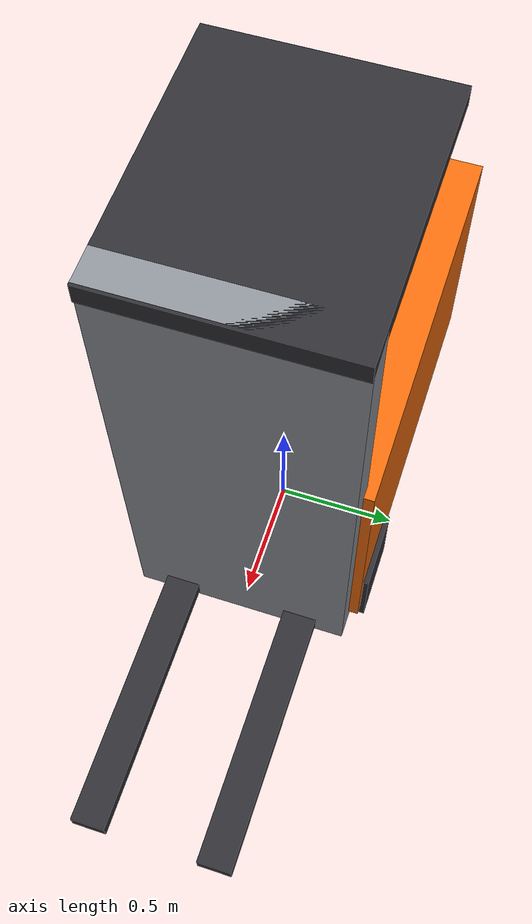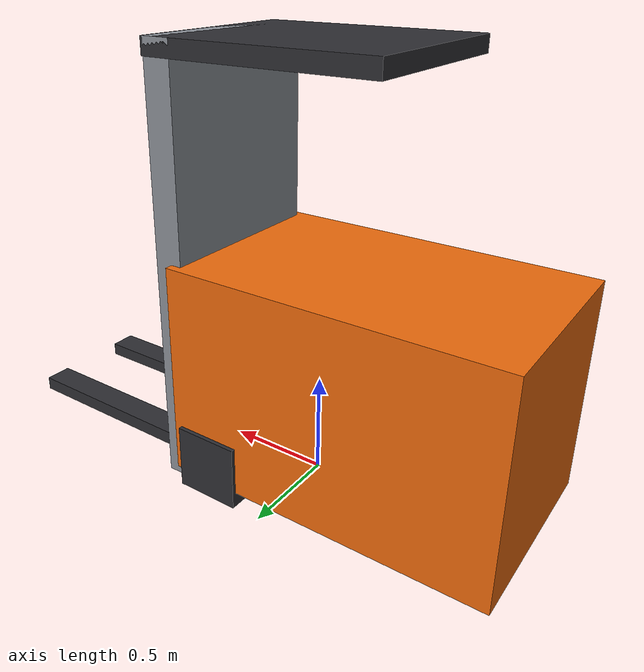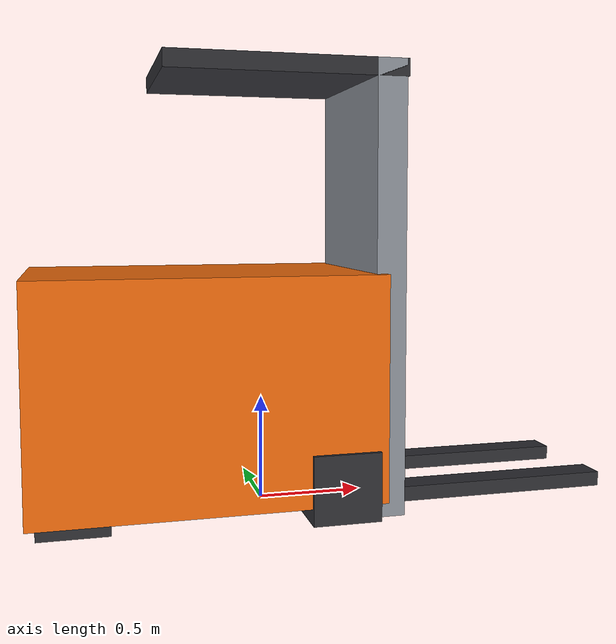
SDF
<?xml version="1.0" ?>
<sdf version="1.8">
  <!-- Generated by scripts/geometry_visibility/make_warehouse_full.py with the
       dynamic variant selected. Edit the generator, not this file. -->
  <model name="dyn_forklift">
    <static>false</static>
    <link name="body">
      <gravity>false</gravity>
      <inertial><mass>2200.0</mass><inertia>
        <ixx>600.0</ixx><iyy>900.0</iyy><izz>800.0</izz><ixy>0</ixy><ixz>0</ixz><iyz>0</iyz>
      </inertia></inertial>
      <collision name="body_collision"><pose>-0.300 0.000 0.600 0 0 0</pose><geometry><box><size>1.600 0.980 1.050</size></box></geometry></collision><visual name="body_visual"><pose>-0.300 0.000 0.600 0 0 0</pose><geometry><box><size>1.600 0.980 1.050</size></box></geometry><material><ambient>0.94 0.42 0.05 1</ambient><diffuse>0.94 0.42 0.05 1</diffuse></material></visual><collision name="cab_mast_collision"><pose>0.520 0.000 1.045 0 0 0</pose><geometry><box><size>0.140 0.900 2.090</size></box></geometry></collision><visual name="cab_mast_visual"><pose>0.520 0.000 1.045 0 0 0</pose><geometry><box><size>0.140 0.900 2.090</size></box></geometry><material><ambient>0.55 0.57 0.60 1</ambient><diffuse>0.55 0.57 0.60 1</diffuse></material></visual><collision name="overhead_guard_collision"><pose>0.050 0.000 2.050 0 0 0</pose><geometry><box><size>1.100 0.900 0.080</size></box></geometry></collision><visual name="overhead_guard_visual"><pose>0.050 0.000 2.050 0 0 0</pose><geometry><box><size>1.100 0.900 0.080</size></box></geometry><material><ambient>0.18 0.18 0.20 1</ambient><diffuse>0.18 0.18 0.20 1</diffuse></material></visual><collision name="fork_left_collision"><pose>1.120 -0.260 0.060 0 0 0</pose><geometry><box><size>1.100 0.140 0.070</size></box></geometry></collision><visual name="fork_left_visual"><pose>1.120 -0.260 0.060 0 0 0</pose><geometry><box><size>1.100 0.140 0.070</size></box></geometry><material><ambient>0.18 0.18 0.20 1</ambient><diffuse>0.18 0.18 0.20 1</diffuse></material></visual><collision name="fork_right_collision"><pose>1.120 0.260 0.060 0 0 0</pose><geometry><box><size>1.100 0.140 0.070</size></box></geometry></collision><visual name="fork_right_visual"><pose>1.120 0.260 0.060 0 0 0</pose><geometry><box><size>1.100 0.140 0.070</size></box></geometry><material><ambient>0.18 0.18 0.20 1</ambient><diffuse>0.18 0.18 0.20 1</diffuse></material></visual><collision name="wheel_front_collision"><pose>0.300 0.000 0.160 0 0 0</pose><geometry><box><size>0.320 1.020 0.320</size></box></geometry></collision><visual name="wheel_front_visual"><pose>0.300 0.000 0.160 0 0 0</pose><geometry><box><size>0.320 1.020 0.320</size></box></geometry><material><ambient>0.18 0.18 0.20 1</ambient><diffuse>0.18 0.18 0.20 1</diffuse></material></visual><collision name="wheel_rear_collision"><pose>-0.900 0.000 0.160 0 0 0</pose><geometry><box><size>0.320 0.800 0.320</size></box></geometry></collision><visual name="wheel_rear_visual"><pose>-0.900 0.000 0.160 0 0 0</pose><geometry><box><size>0.320 0.800 0.320</size></box></geometry><material><ambient>0.18 0.18 0.20 1</ambient><diffuse>0.18 0.18 0.20 1</diffuse></material></visual>
    </link>
  </model>
</sdf>
